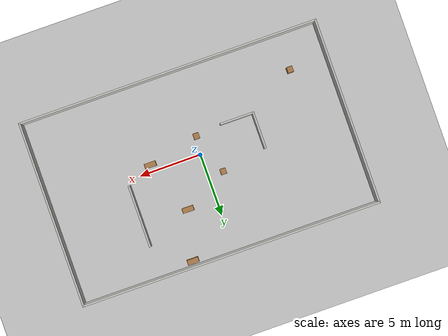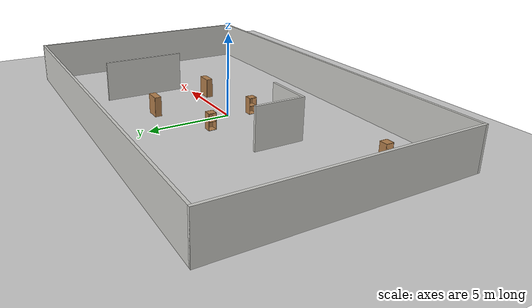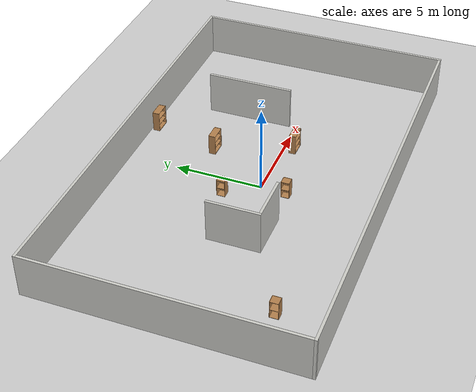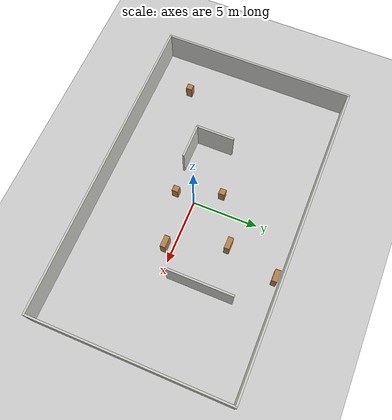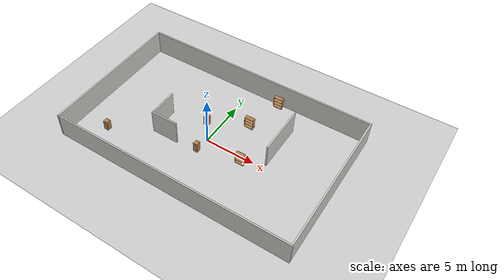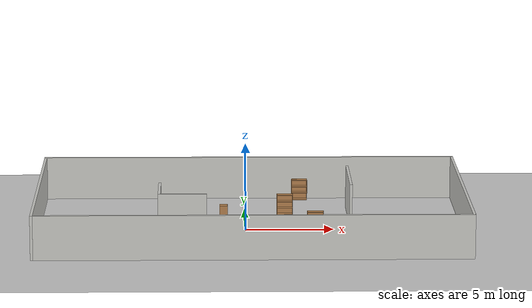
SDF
<sdf version="1.7">
 <world name="default">
  <light name="sun" type="directional">
   <pose>0 0 10 0 -0 0</pose>
   <diffuse>0.8 0.8 0.8 1</diffuse>
   <specular>0.2 0.2 0.2 1</specular>
   <attenuation>
    <range>1000</range>
    <constant>0.9</constant>
    <linear>0.01</linear>
    <quadratic>0.001</quadratic>
   </attenuation>
   <direction>-0.5 0.1 -0.9</direction>
   <spot><inner_angle>0</inner_angle><outer_angle>0</outer_angle><falloff>0</falloff></spot>
  </light>
  <model name="ground_plane">
   <static>1</static>
   <link name="link">
    <collision name="collision">
     <geometry><plane><normal>0 0 1</normal><size>100 100</size></plane></geometry>
     <surface>
      <contact><collide_bitmask>65535</collide_bitmask></contact>
      <friction><ode><mu>100</mu><mu2>50</mu2></ode></friction>
     </surface>
    </collision>
    <visual name="visual">
     <cast_shadows>0</cast_shadows>
     <geometry><plane><normal>0 0 1</normal><size>100 100</size></plane></geometry>
     <material>
      <script><uri>file://media/materials/scripts/gazebo.material</uri><name>Gazebo/Grey</name></script>
     </material>
    </visual>
   </link>
  </model>
  <gravity>0 0 -9.8</gravity>
  <magnetic_field>6e-06 2.3e-05 -4.2e-05</magnetic_field>
  <atmosphere type="adiabatic"/>
  <physics type="ode">
   <max_step_size>0.001</max_step_size>
   <real_time_factor>1</real_time_factor>
   <real_time_update_rate>1000</real_time_update_rate>
  </physics>
  <scene><ambient>0.4 0.4 0.4 1</ambient><background>0.7 0.7 0.7 1</background><shadows>1</shadows></scene>
  <audio><device>default</device></audio>
  <spherical_coordinates>
   <surface_model>EARTH_WGS84</surface_model>
   <latitude_deg>0</latitude_deg>
   <longitude_deg>0</longitude_deg>
   <elevation>0</elevation>
   <heading_deg>0</heading_deg>
  </spherical_coordinates>
  <model name="Trayectoria">
   <pose>0.301224 0.555815 0 0 -0 0</pose>
   <link name="Wall_1">
    <collision name="Wall_1_Collision">
     <geometry><box><size>24.25 0.15 2.5</size></box></geometry>
     <pose>0 0 1.25 0 -0 0</pose>
    </collision>
    <visual name="Wall_1_Visual">
     <pose>0 0 1.25 0 -0 0</pose>
     <geometry><box><size>24.25 0.15 2.5</size></box></geometry>
     <material>
      <script><uri>file://media/materials/scripts/gazebo.material</uri><name>Gazebo/CeilingTiled</name></script>
      <ambient>1 1 1 1</ambient>
     </material>
     <meta><layer>0</layer></meta>
    </visual>
    <pose>0 7.425 0 0 -0 0</pose>
   </link>
   <link name="Wall_2">
    <collision name="Wall_2_Collision">
     <geometry><box><size>15 0.15 2.5</size></box></geometry>
     <pose>0 0 1.25 0 -0 0</pose>
    </collision>
    <visual name="Wall_2_Visual">
     <pose>0 0 1.25 0 -0 0</pose>
     <geometry><box><size>15 0.15 2.5</size></box></geometry>
     <material>
      <script><uri>file://media/materials/scripts/gazebo.material</uri><name>Gazebo/CeilingTiled</name></script>
      <ambient>1 1 1 1</ambient>
     </material>
     <meta><layer>0</layer></meta>
    </visual>
    <pose>12.05 -0 0 0 -0 -1.5708</pose>
   </link>
   <link name="Wall_3">
    <collision name="Wall_3_Collision">
     <geometry><box><size>24.25 0.15 2.5</size></box></geometry>
     <pose>0 0 1.25 0 -0 0</pose>
    </collision>
    <visual name="Wall_3_Visual">
     <pose>0 0 1.25 0 -0 0</pose>
     <geometry><box><size>24.25 0.15 2.5</size></box></geometry>
     <material>
      <script><uri>file://media/materials/scripts/gazebo.material</uri><name>Gazebo/CeilingTiled</name></script>
      <ambient>1 1 1 1</ambient>
     </material>
     <meta><layer>0</layer></meta>
    </visual>
    <pose>0 -7.425 0 0 -0 3.14159</pose>
   </link>
   <link name="Wall_4">
    <collision name="Wall_4_Collision">
     <geometry><box><size>15 0.15 2.5</size></box></geometry>
     <pose>0 0 1.25 0 -0 0</pose>
    </collision>
    <visual name="Wall_4_Visual">
     <pose>0 0 1.25 0 -0 0</pose>
     <geometry><box><size>15 0.15 2.5</size></box></geometry>
     <material>
      <script><uri>file://media/materials/scripts/gazebo.material</uri><name>Gazebo/CeilingTiled</name></script>
      <ambient>1 1 1 1</ambient>
     </material>
     <meta><layer>0</layer></meta>
    </visual>
    <pose>-12.05 -0 0 0 -0 1.5708</pose>
   </link>
   <link name="Wall_6">
    <collision name="Wall_6_Collision">
     <geometry><box><size>3 0.15 2.5</size></box></geometry>
     <pose>0 0 1.25 0 -0 0</pose>
    </collision>
    <visual name="Wall_6_Visual">
     <pose>0 0 1.25 0 -0 0</pose>
     <geometry><box><size>3 0.15 2.5</size></box></geometry>
     <material>
      <script><uri>file://media/materials/scripts/gazebo.material</uri><name>Gazebo/CeilingTiled</name></script>
      <ambient>1 1 1 1</ambient>
     </material>
     <meta><layer>0</layer></meta>
    </visual>
    <pose>-5.18032 -0.862846 0 0 -0 -1.5708</pose>
   </link>
   <link name="Wall_7">
    <collision name="Wall_7_Collision">
     <geometry><box><size>2.75 0.15 2.5</size></box></geometry>
     <pose>0 0 1.25 0 -0 0</pose>
    </collision>
    <visual name="Wall_7_Visual">
     <pose>0 0 1.25 0 -0 0</pose>
     <geometry><box><size>2.75 0.15 2.5</size></box></geometry>
     <material>
      <script><uri>file://media/materials/scripts/gazebo.material</uri><name>Gazebo/CeilingTiled</name></script>
      <ambient>1 1 1 1</ambient>
     </material>
     <meta><layer>0</layer></meta>
    </visual>
    <pose>-3.88032 -2.28785 0 0 -0 0</pose>
   </link>
   <link name="Wall_9">
    <collision name="Wall_9_Collision">
     <geometry><box><size>5 0.15 2.5</size></box></geometry>
     <pose>0 0 1.25 0 -0 0</pose>
    </collision>
    <visual name="Wall_9_Visual">
     <pose>0 0 1.25 0 -0 0</pose>
     <geometry><box><size>5 0.15 2.5</size></box></geometry>
     <material>
      <script><uri>file://media/materials/scripts/gazebo.material</uri><name>Gazebo/CeilingTiled</name></script>
      <ambient>1 1 1 1</ambient>
     </material>
     <meta><layer>0</layer></meta>
    </visual>
    <pose>5.70627 2.37083 0 0 -0 -1.5708</pose>
   </link>
   <static>1</static>
  </model>
  <model name="cabinet">
   <static>1</static>
   <link name="cabinet_bottom_plate">
    <inertial>
     <pose>0 0 -1 0 -0 0</pose>
     <inertia><ixx>2.05</ixx><ixy>0</ixy><ixz>0</ixz><iyy>2.05</iyy><iyz>0</iyz><izz>2.05</izz></inertia>
     <mass>25</mass>
    </inertial>
    <collision name="cabinet_bottom_plate_geom">
     <pose>0 0 0.01 0 -0 0</pose>
     <geometry><box><size>0.45 0.45 0.02</size></box></geometry>
    </collision>
    <visual name="cabinet_bottom_plate_geom_visual">
     <pose>0 0 0.01 0 -0 0</pose>
     <geometry><box><size>0.45 0.45 0.02</size></box></geometry>
     <material>
      <script><uri>file://media/materials/scripts/gazebo.material</uri><name>Gazebo/Wood</name></script>
     </material>
    </visual>
    <collision name="cabinet_bottom_plate_geom_cabinet_back_plate">
     <pose>0.235 0 0.51 0 -0 0</pose>
     <geometry><box><size>0.02 0.45 1.02</size></box></geometry>
    </collision>
    <visual name="cabinet_bottom_plate_geom_cabinet_back_plate_visual">
     <pose>0.235 0 0.51 0 -0 0</pose>
     <geometry><box><size>0.02 0.45 1.02</size></box></geometry>
     <material>
      <script><uri>file://media/materials/scripts/gazebo.material</uri><name>Gazebo/Wood</name></script>
     </material>
    </visual>
    <collision name="cabinet_bottom_plate_geom_cabinet_left_plate">
     <pose>0 0.235 0.51 0 -0 0</pose>
     <geometry><box><size>0.45 0.02 1.02</size></box></geometry>
    </collision>
    <visual name="cabinet_bottom_plate_geom_cabinet_left_plate_visual">
     <pose>0 0.235 0.51 0 -0 0</pose>
     <geometry><box><size>0.45 0.02 1.02</size></box></geometry>
     <material>
      <script><uri>file://media/materials/scripts/gazebo.material</uri><name>Gazebo/Wood</name></script>
     </material>
    </visual>
    <collision name="cabinet_bottom_plate_geom_cabinet_middle_plate">
     <pose>0 0 0.51 0 -0 0</pose>
     <geometry><box><size>0.45 0.45 0.02</size></box></geometry>
    </collision>
    <visual name="cabinet_bottom_plate_geom_cabinet_middle_plate_visual">
     <pose>0 0 0.51 0 -0 0</pose>
     <geometry><box><size>0.45 0.45 0.02</size></box></geometry>
     <material>
      <script><uri>file://media/materials/scripts/gazebo.material</uri><name>Gazebo/Wood</name></script>
     </material>
    </visual>
    <collision name="cabinet_bottom_plate_geom_cabinet_right_plate">
     <pose>0 -0.235 0.51 0 -0 0</pose>
     <geometry><box><size>0.45 0.02 1.02</size></box></geometry>
    </collision>
    <visual name="cabinet_bottom_plate_geom_cabinet_right_plate_visual">
     <pose>0 -0.235 0.51 0 -0 0</pose>
     <geometry><box><size>0.45 0.02 1.02</size></box></geometry>
     <material>
      <script><uri>file://media/materials/scripts/gazebo.material</uri><name>Gazebo/Wood</name></script>
     </material>
    </visual>
    <collision name="cabinet_bottom_plate_geom_cabinet_top_plate">
     <pose>0 0 1.01 0 -0 0</pose>
     <geometry><box><size>0.45 0.45 0.02</size></box></geometry>
    </collision>
    <visual name="cabinet_bottom_plate_geom_cabinet_top_plate_visual">
     <pose>0 0 1.01 0 -0 0</pose>
     <geometry><box><size>0.45 0.45 0.02</size></box></geometry>
     <material>
      <script><uri>file://media/materials/scripts/gazebo.material</uri><name>Gazebo/Wood</name></script>
     </material>
    </visual>
   </link>
   <pose>-1.24972 1.78251 0 0 -0 0</pose>
  </model>
  <model name="cabinet_0">
   <static>1</static>
   <link name="cabinet_bottom_plate">
    <inertial>
     <pose>0 0 -1 0 -0 0</pose>
     <inertia><ixx>2.05</ixx><ixy>0</ixy><ixz>0</ixz><iyy>2.05</iyy><iyz>0</iyz><izz>2.05</izz></inertia>
     <mass>25</mass>
    </inertial>
    <collision name="cabinet_bottom_plate_geom">
     <pose>0 0 0.01 0 -0 0</pose>
     <geometry><box><size>0.45 0.45 0.02</size></box></geometry>
    </collision>
    <visual name="cabinet_bottom_plate_geom_visual">
     <pose>0 0 0.01 0 -0 0</pose>
     <geometry><box><size>0.45 0.45 0.02</size></box></geometry>
     <material>
      <script><uri>file://media/materials/scripts/gazebo.material</uri><name>Gazebo/Wood</name></script>
     </material>
    </visual>
    <collision name="cabinet_bottom_plate_geom_cabinet_back_plate">
     <pose>0.235 0 0.51 0 -0 0</pose>
     <geometry><box><size>0.02 0.45 1.02</size></box></geometry>
    </collision>
    <visual name="cabinet_bottom_plate_geom_cabinet_back_plate_visual">
     <pose>0.235 0 0.51 0 -0 0</pose>
     <geometry><box><size>0.02 0.45 1.02</size></box></geometry>
     <material>
      <script><uri>file://media/materials/scripts/gazebo.material</uri><name>Gazebo/Wood</name></script>
     </material>
    </visual>
    <collision name="cabinet_bottom_plate_geom_cabinet_left_plate">
     <pose>0 0.235 0.51 0 -0 0</pose>
     <geometry><box><size>0.45 0.02 1.02</size></box></geometry>
    </collision>
    <visual name="cabinet_bottom_plate_geom_cabinet_left_plate_visual">
     <pose>0 0.235 0.51 0 -0 0</pose>
     <geometry><box><size>0.45 0.02 1.02</size></box></geometry>
     <material>
      <script><uri>file://media/materials/scripts/gazebo.material</uri><name>Gazebo/Wood</name></script>
     </material>
    </visual>
    <collision name="cabinet_bottom_plate_geom_cabinet_middle_plate">
     <pose>0 0 0.51 0 -0 0</pose>
     <geometry><box><size>0.45 0.45 0.02</size></box></geometry>
    </collision>
    <visual name="cabinet_bottom_plate_geom_cabinet_middle_plate_visual">
     <pose>0 0 0.51 0 -0 0</pose>
     <geometry><box><size>0.45 0.45 0.02</size></box></geometry>
     <material>
      <script><uri>file://media/materials/scripts/gazebo.material</uri><name>Gazebo/Wood</name></script>
     </material>
    </visual>
    <collision name="cabinet_bottom_plate_geom_cabinet_right_plate">
     <pose>0 -0.235 0.51 0 -0 0</pose>
     <geometry><box><size>0.45 0.02 1.02</size></box></geometry>
    </collision>
    <visual name="cabinet_bottom_plate_geom_cabinet_right_plate_visual">
     <pose>0 -0.235 0.51 0 -0 0</pose>
     <geometry><box><size>0.45 0.02 1.02</size></box></geometry>
     <material>
      <script><uri>file://media/materials/scripts/gazebo.material</uri><name>Gazebo/Wood</name></script>
     </material>
    </visual>
    <collision name="cabinet_bottom_plate_geom_cabinet_top_plate">
     <pose>0 0 1.01 0 -0 0</pose>
     <geometry><box><size>0.45 0.45 0.02</size></box></geometry>
    </collision>
    <visual name="cabinet_bottom_plate_geom_cabinet_top_plate_visual">
     <pose>0 0 1.01 0 -0 0</pose>
     <geometry><box><size>0.45 0.45 0.02</size></box></geometry>
     <material>
      <script><uri>file://media/materials/scripts/gazebo.material</uri><name>Gazebo/Wood</name></script>
     </material>
    </visual>
   </link>
   <pose>-8.76566 -3.96951 0 0 -0 0</pose>
  </model>
  <model name="bookshelf">
   <static>1</static>
   <link name="link">
    <inertial><mass>1</mass></inertial>
    <collision name="back">
     <pose>0 0.005 0.6 0 -0 0</pose>
     <geometry><box><size>0.9 0.01 1.2</size></box></geometry>
    </collision>
    <visual name="visual1">
     <pose>0 0.005 0.6 0 -0 0</pose>
     <geometry><box><size>0.9 0.01 1.2</size></box></geometry>
     <material>
      <script><uri>file://media/materials/scripts/gazebo.material</uri><name>Gazebo/Wood</name></script>
     </material>
    </visual>
    <collision name="left_side">
     <pose>0.45 -0.195 0.6 0 -0 0</pose>
     <geometry><box><size>0.02 0.4 1.2</size></box></geometry>
    </collision>
    <visual name="visual2">
     <pose>0.45 -0.195 0.6 0 -0 0</pose>
     <geometry><box><size>0.02 0.4 1.2</size></box></geometry>
     <material>
      <script><uri>file://media/materials/scripts/gazebo.material</uri><name>Gazebo/Wood</name></script>
     </material>
    </visual>
    <collision name="right_side">
     <pose>-0.45 -0.195 0.6 0 -0 0</pose>
     <geometry><box><size>0.02 0.4 1.2</size></box></geometry>
    </collision>
    <visual name="visual3">
     <pose>-0.45 -0.195 0.6 0 -0 0</pose>
     <geometry><box><size>0.02 0.4 1.2</size></box></geometry>
     <material>
      <script><uri>file://media/materials/scripts/gazebo.material</uri><name>Gazebo/Wood</name></script>
     </material>
    </visual>
    <collision name="bottom">
     <pose>0 -0.195 0.03 0 -0 0</pose>
     <geometry><box><size>0.88 0.4 0.06</size></box></geometry>
    </collision>
    <visual name="visual4">
     <pose>0 -0.195 0.03 0 -0 0</pose>
     <geometry><box><size>0.88 0.4 0.06</size></box></geometry>
     <material>
      <script><uri>file://media/materials/scripts/gazebo.material</uri><name>Gazebo/Wood</name></script>
     </material>
    </visual>
    <collision name="top">
     <pose>0 -0.195 1.19 0 -0 0</pose>
     <geometry><box><size>0.88 0.4 0.02</size></box></geometry>
    </collision>
    <visual name="visual5">
     <pose>0 -0.195 1.19 0 -0 0</pose>
     <geometry><box><size>0.88 0.4 0.02</size></box></geometry>
     <material>
      <script><uri>file://media/materials/scripts/gazebo.material</uri><name>Gazebo/Wood</name></script>
     </material>
    </visual>
    <collision name="low_shelf">
     <pose>0 -0.195 0.43 0 -0 0</pose>
     <geometry><box><size>0.88 0.4 0.02</size></box></geometry>
    </collision>
    <visual name="visual6">
     <pose>0 -0.195 0.43 0 -0 0</pose>
     <geometry><box><size>0.88 0.4 0.02</size></box></geometry>
     <material>
      <script><uri>file://media/materials/scripts/gazebo.material</uri><name>Gazebo/Wood</name></script>
     </material>
    </visual>
    <collision name="high_shelf">
     <pose>0 -0.195 0.8 0 -0 0</pose>
     <geometry><box><size>0.88 0.4 0.02</size></box></geometry>
    </collision>
    <visual name="visual7">
     <pose>0 -0.195 0.8 0 -0 0</pose>
     <geometry><box><size>0.88 0.4 0.02</size></box></geometry>
     <material>
      <script><uri>file://media/materials/scripts/gazebo.material</uri><name>Gazebo/Wood</name></script>
     </material>
    </visual>
   </link>
   <pose>3.28407 7.77405 0 0 -0 0</pose>
  </model>
  <model name="bookshelf_0">
   <static>1</static>
   <link name="link">
    <inertial><mass>1</mass></inertial>
    <collision name="back">
     <pose>0 0.005 0.6 0 -0 0</pose>
     <geometry><box><size>0.9 0.01 1.2</size></box></geometry>
    </collision>
    <visual name="visual1">
     <pose>0 0.005 0.6 0 -0 0</pose>
     <geometry><box><size>0.9 0.01 1.2</size></box></geometry>
     <material>
      <script><uri>file://media/materials/scripts/gazebo.material</uri><name>Gazebo/Wood</name></script>
     </material>
    </visual>
    <collision name="left_side">
     <pose>0.45 -0.195 0.6 0 -0 0</pose>
     <geometry><box><size>0.02 0.4 1.2</size></box></geometry>
    </collision>
    <visual name="visual2">
     <pose>0.45 -0.195 0.6 0 -0 0</pose>
     <geometry><box><size>0.02 0.4 1.2</size></box></geometry>
     <material>
      <script><uri>file://media/materials/scripts/gazebo.material</uri><name>Gazebo/Wood</name></script>
     </material>
    </visual>
    <collision name="right_side">
     <pose>-0.45 -0.195 0.6 0 -0 0</pose>
     <geometry><box><size>0.02 0.4 1.2</size></box></geometry>
    </collision>
    <visual name="visual3">
     <pose>-0.45 -0.195 0.6 0 -0 0</pose>
     <geometry><box><size>0.02 0.4 1.2</size></box></geometry>
     <material>
      <script><uri>file://media/materials/scripts/gazebo.material</uri><name>Gazebo/Wood</name></script>
     </material>
    </visual>
    <collision name="bottom">
     <pose>0 -0.195 0.03 0 -0 0</pose>
     <geometry><box><size>0.88 0.4 0.06</size></box></geometry>
    </collision>
    <visual name="visual4">
     <pose>0 -0.195 0.03 0 -0 0</pose>
     <geometry><box><size>0.88 0.4 0.06</size></box></geometry>
     <material>
      <script><uri>file://media/materials/scripts/gazebo.material</uri><name>Gazebo/Wood</name></script>
     </material>
    </visual>
    <collision name="top">
     <pose>0 -0.195 1.19 0 -0 0</pose>
     <geometry><box><size>0.88 0.4 0.02</size></box></geometry>
    </collision>
    <visual name="visual5">
     <pose>0 -0.195 1.19 0 -0 0</pose>
     <geometry><box><size>0.88 0.4 0.02</size></box></geometry>
     <material>
      <script><uri>file://media/materials/scripts/gazebo.material</uri><name>Gazebo/Wood</name></script>
     </material>
    </visual>
    <collision name="low_shelf">
     <pose>0 -0.195 0.43 0 -0 0</pose>
     <geometry><box><size>0.88 0.4 0.02</size></box></geometry>
    </collision>
    <visual name="visual6">
     <pose>0 -0.195 0.43 0 -0 0</pose>
     <geometry><box><size>0.88 0.4 0.02</size></box></geometry>
     <material>
      <script><uri>file://media/materials/scripts/gazebo.material</uri><name>Gazebo/Wood</name></script>
     </material>
    </visual>
    <collision name="high_shelf">
     <pose>0 -0.195 0.8 0 -0 0</pose>
     <geometry><box><size>0.88 0.4 0.02</size></box></geometry>
    </collision>
    <visual name="visual7">
     <pose>0 -0.195 0.8 0 -0 0</pose>
     <geometry><box><size>0.88 0.4 0.02</size></box></geometry>
     <material>
      <script><uri>file://media/materials/scripts/gazebo.material</uri><name>Gazebo/Wood</name></script>
     </material>
    </visual>
   </link>
   <pose>3.94268 -0.383668 0 0 -0 0</pose>
  </model>
  <model name="bookshelf_1">
   <static>1</static>
   <link name="link">
    <inertial><mass>1</mass></inertial>
    <collision name="back">
     <pose>0 0.005 0.6 0 -0 0</pose>
     <geometry><box><size>0.9 0.01 1.2</size></box></geometry>
    </collision>
    <visual name="visual1">
     <pose>0 0.005 0.6 0 -0 0</pose>
     <geometry><box><size>0.9 0.01 1.2</size></box></geometry>
     <material>
      <script><uri>file://media/materials/scripts/gazebo.material</uri><name>Gazebo/Wood</name></script>
     </material>
    </visual>
    <collision name="left_side">
     <pose>0.45 -0.195 0.6 0 -0 0</pose>
     <geometry><box><size>0.02 0.4 1.2</size></box></geometry>
    </collision>
    <visual name="visual2">
     <pose>0.45 -0.195 0.6 0 -0 0</pose>
     <geometry><box><size>0.02 0.4 1.2</size></box></geometry>
     <material>
      <script><uri>file://media/materials/scripts/gazebo.material</uri><name>Gazebo/Wood</name></script>
     </material>
    </visual>
    <collision name="right_side">
     <pose>-0.45 -0.195 0.6 0 -0 0</pose>
     <geometry><box><size>0.02 0.4 1.2</size></box></geometry>
    </collision>
    <visual name="visual3">
     <pose>-0.45 -0.195 0.6 0 -0 0</pose>
     <geometry><box><size>0.02 0.4 1.2</size></box></geometry>
     <material>
      <script><uri>file://media/materials/scripts/gazebo.material</uri><name>Gazebo/Wood</name></script>
     </material>
    </visual>
    <collision name="bottom">
     <pose>0 -0.195 0.03 0 -0 0</pose>
     <geometry><box><size>0.88 0.4 0.06</size></box></geometry>
    </collision>
    <visual name="visual4">
     <pose>0 -0.195 0.03 0 -0 0</pose>
     <geometry><box><size>0.88 0.4 0.06</size></box></geometry>
     <material>
      <script><uri>file://media/materials/scripts/gazebo.material</uri><name>Gazebo/Wood</name></script>
     </material>
    </visual>
    <collision name="top">
     <pose>0 -0.195 1.19 0 -0 0</pose>
     <geometry><box><size>0.88 0.4 0.02</size></box></geometry>
    </collision>
    <visual name="visual5">
     <pose>0 -0.195 1.19 0 -0 0</pose>
     <geometry><box><size>0.88 0.4 0.02</size></box></geometry>
     <material>
      <script><uri>file://media/materials/scripts/gazebo.material</uri><name>Gazebo/Wood</name></script>
     </material>
    </visual>
    <collision name="low_shelf">
     <pose>0 -0.195 0.43 0 -0 0</pose>
     <geometry><box><size>0.88 0.4 0.02</size></box></geometry>
    </collision>
    <visual name="visual6">
     <pose>0 -0.195 0.43 0 -0 0</pose>
     <geometry><box><size>0.88 0.4 0.02</size></box></geometry>
     <material>
      <script><uri>file://media/materials/scripts/gazebo.material</uri><name>Gazebo/Wood</name></script>
     </material>
    </visual>
    <collision name="high_shelf">
     <pose>0 -0.195 0.8 0 -0 0</pose>
     <geometry><box><size>0.88 0.4 0.02</size></box></geometry>
    </collision>
    <visual name="visual7">
     <pose>0 -0.195 0.8 0 -0 0</pose>
     <geometry><box><size>0.88 0.4 0.02</size></box></geometry>
     <material>
      <script><uri>file://media/materials/scripts/gazebo.material</uri><name>Gazebo/Wood</name></script>
     </material>
    </visual>
   </link>
   <pose>2.32773 3.85724 0 0 -0 0</pose>
  </model>
  <model name="cabinet_1">
   <static>1</static>
   <link name="cabinet_bottom_plate">
    <inertial>
     <pose>0 0 -1 0 -0 0</pose>
     <inertia><ixx>2.05</ixx><ixy>0</ixy><ixz>0</ixz><iyy>2.05</iyy><iyz>0</iyz><izz>2.05</izz></inertia>
     <mass>25</mass>
    </inertial>
    <collision name="cabinet_bottom_plate_geom">
     <pose>0 0 0.01 0 -0 0</pose>
     <geometry><box><size>0.45 0.45 0.02</size></box></geometry>
    </collision>
    <visual name="cabinet_bottom_plate_geom_visual">
     <pose>0 0 0.01 0 -0 0</pose>
     <geometry><box><size>0.45 0.45 0.02</size></box></geometry>
     <material>
      <script><uri>file://media/materials/scripts/gazebo.material</uri><name>Gazebo/Wood</name></script>
     </material>
    </visual>
    <collision name="cabinet_bottom_plate_geom_cabinet_back_plate">
     <pose>0.235 0 0.51 0 -0 0</pose>
     <geometry><box><size>0.02 0.45 1.02</size></box></geometry>
    </collision>
    <visual name="cabinet_bottom_plate_geom_cabinet_back_plate_visual">
     <pose>0.235 0 0.51 0 -0 0</pose>
     <geometry><box><size>0.02 0.45 1.02</size></box></geometry>
     <material>
      <script><uri>file://media/materials/scripts/gazebo.material</uri><name>Gazebo/Wood</name></script>
     </material>
    </visual>
    <collision name="cabinet_bottom_plate_geom_cabinet_left_plate">
     <pose>0 0.235 0.51 0 -0 0</pose>
     <geometry><box><size>0.45 0.02 1.02</size></box></geometry>
    </collision>
    <visual name="cabinet_bottom_plate_geom_cabinet_left_plate_visual">
     <pose>0 0.235 0.51 0 -0 0</pose>
     <geometry><box><size>0.45 0.02 1.02</size></box></geometry>
     <material>
      <script><uri>file://media/materials/scripts/gazebo.material</uri><name>Gazebo/Wood</name></script>
     </material>
    </visual>
    <collision name="cabinet_bottom_plate_geom_cabinet_middle_plate">
     <pose>0 0 0.51 0 -0 0</pose>
     <geometry><box><size>0.45 0.45 0.02</size></box></geometry>
    </collision>
    <visual name="cabinet_bottom_plate_geom_cabinet_middle_plate_visual">
     <pose>0 0 0.51 0 -0 0</pose>
     <geometry><box><size>0.45 0.45 0.02</size></box></geometry>
     <material>
      <script><uri>file://media/materials/scripts/gazebo.material</uri><name>Gazebo/Wood</name></script>
     </material>
    </visual>
    <collision name="cabinet_bottom_plate_geom_cabinet_right_plate">
     <pose>0 -0.235 0.51 0 -0 0</pose>
     <geometry><box><size>0.45 0.02 1.02</size></box></geometry>
    </collision>
    <visual name="cabinet_bottom_plate_geom_cabinet_right_plate_visual">
     <pose>0 -0.235 0.51 0 -0 0</pose>
     <geometry><box><size>0.45 0.02 1.02</size></box></geometry>
     <material>
      <script><uri>file://media/materials/scripts/gazebo.material</uri><name>Gazebo/Wood</name></script>
     </material>
    </visual>
    <collision name="cabinet_bottom_plate_geom_cabinet_top_plate">
     <pose>0 0 1.01 0 -0 0</pose>
     <geometry><box><size>0.45 0.45 0.02</size></box></geometry>
    </collision>
    <visual name="cabinet_bottom_plate_geom_cabinet_top_plate_visual">
     <pose>0 0 1.01 0 -0 0</pose>
     <geometry><box><size>0.45 0.45 0.02</size></box></geometry>
     <material>
      <script><uri>file://media/materials/scripts/gazebo.material</uri><name>Gazebo/Wood</name></script>
     </material>
    </visual>
   </link>
   <pose>-0.173934 -1.50397 0 0 -0 0</pose>
  </model>
 </world>
</sdf>
